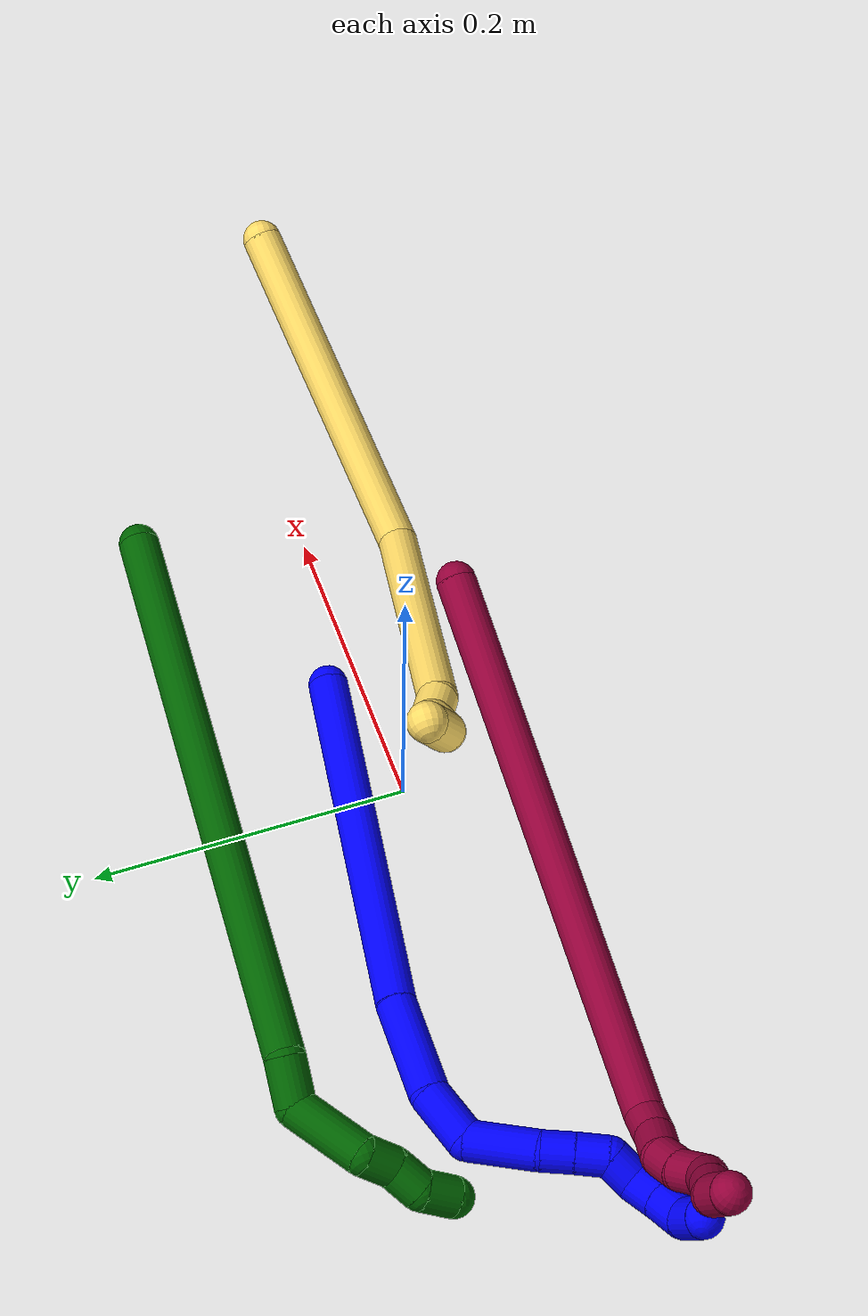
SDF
<sdf version="1.7">
 <world name="default">
  <model name="1">
   <static>0</static>
   <link name="1">
    <collision name="collision-cylinder-e_1_1_4">
     <pose>-0.052096 0.009545 0.104828 -0.090799 -0.459575 0.021253</pose>
     <geometry><cylinder><radius>0.0125</radius><length>0.234895</length></cylinder></geometry>
     <surface>
      <friction><ode><mu>1.16</mu><mu2>1.16</mu2><slip1>0</slip1><slip2>0</slip2></ode></friction>
      <contact><ode><kp>1e+06</kp><kd>1</kd><max_vel>0</max_vel><min_depth>0.001</min_depth></ode></contact>
     </surface>
    </collision>
    <visual name="visual-cylinder-e_1_1_4">
     <pose>-0.052096 0.009545 0.104828 -0.090799 -0.459575 0.021253</pose>
     <geometry><cylinder><radius>0.0125</radius><length>0.234895</length></cylinder></geometry>
     <material><ambient>0 0 1 1</ambient></material>
    </visual>
    <collision name="collision-cylinder-e_2_4_5">
     <pose>-0.121042 0.018943 0.236854 0.005377 -0.554649 -0.001531</pose>
     <geometry><cylinder><radius>0.0125</radius><length>0.06399</length></cylinder></geometry>
     <surface>
      <friction><ode><mu>1.16</mu><mu2>1.16</mu2><slip1>0</slip1><slip2>0</slip2></ode></friction>
      <contact><ode><kp>1e+06</kp><kd>1</kd><max_vel>0</max_vel><min_depth>0.001</min_depth></ode></contact>
     </surface>
    </collision>
    <visual name="visual-cylinder-e_2_4_5">
     <pose>-0.121042 0.018943 0.236854 0.005377 -0.554649 -0.001531</pose>
     <geometry><cylinder><radius>0.0125</radius><length>0.06399</length></cylinder></geometry>
     <material><ambient>0 0 1 1</ambient></material>
    </visual>
    <collision name="collision-cylinder-e_3_5_6">
     <pose>-0.151175 0.015774 0.276244 0.243037 -0.813323 -0.10509</pose>
     <geometry><cylinder><radius>0.0125</radius><length>0.036563</length></cylinder></geometry>
     <surface>
      <friction><ode><mu>1.16</mu><mu2>1.16</mu2><slip1>0</slip1><slip2>0</slip2></ode></friction>
      <contact><ode><kp>1e+06</kp><kd>1</kd><max_vel>0</max_vel><min_depth>0.001</min_depth></ode></contact>
     </surface>
    </collision>
    <visual name="visual-cylinder-e_3_5_6">
     <pose>-0.151175 0.015774 0.276244 0.243037 -0.813323 -0.10509</pose>
     <geometry><cylinder><radius>0.0125</radius><length>0.036563</length></cylinder></geometry>
     <material><ambient>0 0 1 1</ambient></material>
    </visual>
    <collision name="collision-cylinder-e_4_6_7">
     <pose>-0.180951 -0.001568 0.291622 1.35185 -0.843851 -0.691078</pose>
     <geometry><cylinder><radius>0.0125</radius><length>0.044145</length></cylinder></geometry>
     <surface>
      <friction><ode><mu>1.16</mu><mu2>1.16</mu2><slip1>0</slip1><slip2>0</slip2></ode></friction>
      <contact><ode><kp>1e+06</kp><kd>1</kd><max_vel>0</max_vel><min_depth>0.001</min_depth></ode></contact>
     </surface>
    </collision>
    <visual name="visual-cylinder-e_4_6_7">
     <pose>-0.180951 -0.001568 0.291622 1.35185 -0.843851 -0.691078</pose>
     <geometry><cylinder><radius>0.0125</radius><length>0.044145</length></cylinder></geometry>
     <material><ambient>0 0 1 1</ambient></material>
    </visual>
    <collision name="collision-cylinder-e_5_7_8">
     <pose>-0.205636 -0.021778 0.294328 1.65212 -0.945848 -1.01342</pose>
     <geometry><cylinder><radius>0.0125</radius><length>0.020204</length></cylinder></geometry>
     <surface>
      <friction><ode><mu>1.16</mu><mu2>1.16</mu2><slip1>0</slip1><slip2>0</slip2></ode></friction>
      <contact><ode><kp>1e+06</kp><kd>1</kd><max_vel>0</max_vel><min_depth>0.001</min_depth></ode></contact>
     </surface>
    </collision>
    <visual name="visual-cylinder-e_5_7_8">
     <pose>-0.205636 -0.021778 0.294328 1.65212 -0.945848 -1.01342</pose>
     <geometry><cylinder><radius>0.0125</radius><length>0.020204</length></cylinder></geometry>
     <material><ambient>0 0 1 1</ambient></material>
    </visual>
    <collision name="collision-cylinder-e_6_8_9">
     <pose>-0.22217 -0.033222 0.293468 1.63902 -0.982318 -1.04017</pose>
     <geometry><cylinder><radius>0.0125</radius><length>0.020056</length></cylinder></geometry>
     <surface>
      <friction><ode><mu>1.16</mu><mu2>1.16</mu2><slip1>0</slip1><slip2>0</slip2></ode></friction>
      <contact><ode><kp>1e+06</kp><kd>1</kd><max_vel>0</max_vel><min_depth>0.001</min_depth></ode></contact>
     </surface>
    </collision>
    <visual name="visual-cylinder-e_6_8_9">
     <pose>-0.22217 -0.033222 0.293468 1.63902 -0.982318 -1.04017</pose>
     <geometry><cylinder><radius>0.0125</radius><length>0.020056</length></cylinder></geometry>
     <material><ambient>0 0 1 1</ambient></material>
    </visual>
    <collision name="collision-cylinder-e_7_9_10">
     <pose>-0.240103 -0.038493 0.295917 -0.099797 -1.28267 0.074538</pose>
     <geometry><cylinder><radius>0.0125</radius><length>0.020008</length></cylinder></geometry>
     <surface>
      <friction><ode><mu>1.16</mu><mu2>1.16</mu2><slip1>0</slip1><slip2>0</slip2></ode></friction>
      <contact><ode><kp>1e+06</kp><kd>1</kd><max_vel>0</max_vel><min_depth>0.001</min_depth></ode></contact>
     </surface>
    </collision>
    <visual name="visual-cylinder-e_7_9_10">
     <pose>-0.240103 -0.038493 0.295917 -0.099797 -1.28267 0.074538</pose>
     <geometry><cylinder><radius>0.0125</radius><length>0.020008</length></cylinder></geometry>
     <material><ambient>0 0 1 1</ambient></material>
    </visual>
    <collision name="collision-cylinder-e_8_10_11">
     <pose>-0.256288 -0.042633 0.30492 0.621759 -0.714924 -0.238872</pose>
     <geometry><cylinder><radius>0.0125</radius><length>0.020116</length></cylinder></geometry>
     <surface>
      <friction><ode><mu>1.16</mu><mu2>1.16</mu2><slip1>0</slip1><slip2>0</slip2></ode></friction>
      <contact><ode><kp>1e+06</kp><kd>1</kd><max_vel>0</max_vel><min_depth>0.001</min_depth></ode></contact>
     </surface>
    </collision>
    <visual name="visual-cylinder-e_8_10_11">
     <pose>-0.256288 -0.042633 0.30492 0.621759 -0.714924 -0.238872</pose>
     <geometry><cylinder><radius>0.0125</radius><length>0.020116</length></cylinder></geometry>
     <material><ambient>0 0 1 1</ambient></material>
    </visual>
    <collision name="collision-cylinder-e_9_11_12">
     <pose>-0.268748 -0.051452 0.317912 0.572473 -0.626019 -0.189939</pose>
     <geometry><cylinder><radius>0.0125</radius><length>0.020022</length></cylinder></geometry>
     <surface>
      <friction><ode><mu>1.16</mu><mu2>1.16</mu2><slip1>0</slip1><slip2>0</slip2></ode></friction>
      <contact><ode><kp>1e+06</kp><kd>1</kd><max_vel>0</max_vel><min_depth>0.001</min_depth></ode></contact>
     </surface>
    </collision>
    <visual name="visual-cylinder-e_9_11_12">
     <pose>-0.268748 -0.051452 0.317912 0.572473 -0.626019 -0.189939</pose>
     <geometry><cylinder><radius>0.0125</radius><length>0.020022</length></cylinder></geometry>
     <material><ambient>0 0 1 1</ambient></material>
    </visual>
    <collision name="collision-cylinder-e_10_12_2">
     <pose>-0.275382 -0.064253 0.330093 1.00309 -0.076933 -0.042198</pose>
     <geometry><cylinder><radius>0.0125</radius><length>0.02</length></cylinder></geometry>
     <surface>
      <friction><ode><mu>1.16</mu><mu2>1.16</mu2><slip1>0</slip1><slip2>0</slip2></ode></friction>
      <contact><ode><kp>1e+06</kp><kd>1</kd><max_vel>0</max_vel><min_depth>0.001</min_depth></ode></contact>
     </surface>
    </collision>
    <visual name="visual-cylinder-e_10_12_2">
     <pose>-0.275382 -0.064253 0.330093 1.00309 -0.076933 -0.042198</pose>
     <geometry><cylinder><radius>0.0125</radius><length>0.02</length></cylinder></geometry>
     <material><ambient>0 0 1 1</ambient></material>
    </visual>
    <collision name="collision-sphere-2">
     <pose>-0.27615 -0.072659 0.335454 0 -0 0</pose>
     <geometry><sphere><radius>0.0125</radius></sphere></geometry>
     <surface>
      <friction><ode><mu>1.16</mu><mu2>1.16</mu2><slip1>0</slip1><slip2>0</slip2></ode></friction>
      <contact><ode><kp>1e+06</kp><kd>1</kd><max_vel>0</max_vel><min_depth>0.001</min_depth></ode></contact>
     </surface>
    </collision>
    <visual name="visual-sphere-2">
     <pose>-0.27615 -0.072659 0.335454 0 -0 0</pose>
     <geometry><sphere><radius>0.0125</radius></sphere></geometry>
     <material><ambient>0 0 1 1</ambient></material>
    </visual>
    <collision name="collision-sphere-12">
     <pose>-0.274613 -0.055847 0.324732 0 -0 0</pose>
     <geometry><sphere><radius>0.0125</radius></sphere></geometry>
     <surface>
      <friction><ode><mu>1.16</mu><mu2>1.16</mu2><slip1>0</slip1><slip2>0</slip2></ode></friction>
      <contact><ode><kp>1e+06</kp><kd>1</kd><max_vel>0</max_vel><min_depth>0.001</min_depth></ode></contact>
     </surface>
    </collision>
    <visual name="visual-sphere-12">
     <pose>-0.274613 -0.055847 0.324732 0 -0 0</pose>
     <geometry><sphere><radius>0.0125</radius></sphere></geometry>
     <material><ambient>0 0 1 1</ambient></material>
    </visual>
    <collision name="collision-sphere-11">
     <pose>-0.262882 -0.047057 0.311093 0 -0 0</pose>
     <geometry><sphere><radius>0.0125</radius></sphere></geometry>
     <surface>
      <friction><ode><mu>1.16</mu><mu2>1.16</mu2><slip1>0</slip1><slip2>0</slip2></ode></friction>
      <contact><ode><kp>1e+06</kp><kd>1</kd><max_vel>0</max_vel><min_depth>0.001</min_depth></ode></contact>
     </surface>
    </collision>
    <visual name="visual-sphere-11">
     <pose>-0.262882 -0.047057 0.311093 0 -0 0</pose>
     <geometry><sphere><radius>0.0125</radius></sphere></geometry>
     <material><ambient>0 0 1 1</ambient></material>
    </visual>
    <collision name="collision-sphere-10">
     <pose>-0.249695 -0.03821 0.298746 0 -0 0</pose>
     <geometry><sphere><radius>0.0125</radius></sphere></geometry>
     <surface>
      <friction><ode><mu>1.16</mu><mu2>1.16</mu2><slip1>0</slip1><slip2>0</slip2></ode></friction>
      <contact><ode><kp>1e+06</kp><kd>1</kd><max_vel>0</max_vel><min_depth>0.001</min_depth></ode></contact>
     </surface>
    </collision>
    <visual name="visual-sphere-10">
     <pose>-0.249695 -0.03821 0.298746 0 -0 0</pose>
     <geometry><sphere><radius>0.0125</radius></sphere></geometry>
     <material><ambient>0 0 1 1</ambient></material>
    </visual>
    <collision name="collision-sphere-9">
     <pose>-0.230511 -0.038776 0.293089 0 -0 0</pose>
     <geometry><sphere><radius>0.0125</radius></sphere></geometry>
     <surface>
      <friction><ode><mu>1.16</mu><mu2>1.16</mu2><slip1>0</slip1><slip2>0</slip2></ode></friction>
      <contact><ode><kp>1e+06</kp><kd>1</kd><max_vel>0</max_vel><min_depth>0.001</min_depth></ode></contact>
     </surface>
    </collision>
    <visual name="visual-sphere-9">
     <pose>-0.230511 -0.038776 0.293089 0 -0 0</pose>
     <geometry><sphere><radius>0.0125</radius></sphere></geometry>
     <material><ambient>0 0 1 1</ambient></material>
    </visual>
    <collision name="collision-sphere-4">
     <pose>-0.104192 0.019089 0.209656 0 -0 0</pose>
     <geometry><sphere><radius>0.0125</radius></sphere></geometry>
     <surface>
      <friction><ode><mu>1.16</mu><mu2>1.16</mu2><slip1>0</slip1><slip2>0</slip2></ode></friction>
      <contact><ode><kp>1e+06</kp><kd>1</kd><max_vel>0</max_vel><min_depth>0.001</min_depth></ode></contact>
     </surface>
    </collision>
    <visual name="visual-sphere-4">
     <pose>-0.104192 0.019089 0.209656 0 -0 0</pose>
     <geometry><sphere><radius>0.0125</radius></sphere></geometry>
     <material><ambient>0 0 1 1</ambient></material>
    </visual>
    <collision name="collision-sphere-1">
     <geometry><sphere><radius>0.0125</radius></sphere></geometry>
     <surface>
      <friction><ode><mu>1.16</mu><mu2>1.16</mu2><slip1>0</slip1><slip2>0</slip2></ode></friction>
      <contact><ode><kp>1e+06</kp><kd>1</kd><max_vel>0</max_vel><min_depth>0.001</min_depth></ode></contact>
     </surface>
    </collision>
    <visual name="visual-sphere-1">
     <geometry><sphere><radius>0.0125</radius></sphere></geometry>
     <material><ambient>0 0 1 1</ambient></material>
    </visual>
    <collision name="collision-sphere-8">
     <pose>-0.213829 -0.027669 0.293848 0 -0 0</pose>
     <geometry><sphere><radius>0.0125</radius></sphere></geometry>
     <surface>
      <friction><ode><mu>1.16</mu><mu2>1.16</mu2><slip1>0</slip1><slip2>0</slip2></ode></friction>
      <contact><ode><kp>1e+06</kp><kd>1</kd><max_vel>0</max_vel><min_depth>0.001</min_depth></ode></contact>
     </surface>
    </collision>
    <visual name="visual-sphere-8">
     <pose>-0.213829 -0.027669 0.293848 0 -0 0</pose>
     <geometry><sphere><radius>0.0125</radius></sphere></geometry>
     <material><ambient>0 0 1 1</ambient></material>
    </visual>
    <collision name="collision-sphere-5">
     <pose>-0.137892 0.018797 0.264052 0 -0 0</pose>
     <geometry><sphere><radius>0.0125</radius></sphere></geometry>
     <surface>
      <friction><ode><mu>1.16</mu><mu2>1.16</mu2><slip1>0</slip1><slip2>0</slip2></ode></friction>
      <contact><ode><kp>1e+06</kp><kd>1</kd><max_vel>0</max_vel><min_depth>0.001</min_depth></ode></contact>
     </surface>
    </collision>
    <visual name="visual-sphere-5">
     <pose>-0.137892 0.018797 0.264052 0 -0 0</pose>
     <geometry><sphere><radius>0.0125</radius></sphere></geometry>
     <material><ambient>0 0 1 1</ambient></material>
    </visual>
    <collision name="collision-sphere-6">
     <pose>-0.164458 0.012751 0.288436 0 -0 0</pose>
     <geometry><sphere><radius>0.0125</radius></sphere></geometry>
     <surface>
      <friction><ode><mu>1.16</mu><mu2>1.16</mu2><slip1>0</slip1><slip2>0</slip2></ode></friction>
      <contact><ode><kp>1e+06</kp><kd>1</kd><max_vel>0</max_vel><min_depth>0.001</min_depth></ode></contact>
     </surface>
    </collision>
    <visual name="visual-sphere-6">
     <pose>-0.164458 0.012751 0.288436 0 -0 0</pose>
     <geometry><sphere><radius>0.0125</radius></sphere></geometry>
     <material><ambient>0 0 1 1</ambient></material>
    </visual>
    <collision name="collision-sphere-7">
     <pose>-0.197444 -0.015887 0.294808 0 -0 0</pose>
     <geometry><sphere><radius>0.0125</radius></sphere></geometry>
     <surface>
      <friction><ode><mu>1.16</mu><mu2>1.16</mu2><slip1>0</slip1><slip2>0</slip2></ode></friction>
      <contact><ode><kp>1e+06</kp><kd>1</kd><max_vel>0</max_vel><min_depth>0.001</min_depth></ode></contact>
     </surface>
    </collision>
    <visual name="visual-sphere-7">
     <pose>-0.197444 -0.015887 0.294808 0 -0 0</pose>
     <geometry><sphere><radius>0.0125</radius></sphere></geometry>
     <material><ambient>0 0 1 1</ambient></material>
    </visual>
    <inertial>
     <pose>-0.125913 -0.002175 0.199216 0 -0 0</pose>
     <mass>0.5</mass>
     <inertia>
      <ixx>0.001003</ixx>
      <ixy>0</ixy>
      <ixz>0</ixz>
      <iyy>0.001136</iyy>
      <iyz>0</iyz>
      <izz>0.000461</izz>
     </inertia>
    </inertial>
   </link>
   <pose>0.084291 0.021603 0.011498 -1.17536 -0.538617 0.883763</pose>
  </model>
  <model name="5">
   <static>0</static>
   <link name="5">
    <collision name="collision-cylinder-e_1_1_4">
     <pose>-0.011974 -0.023178 -0.10976 2.93348 -0.106336 -0.942591</pose>
     <geometry><cylinder><radius>0.0125</radius><length>0.225635</length></cylinder></geometry>
     <surface>
      <friction><ode><mu>1.16</mu><mu2>1.16</mu2><slip1>0</slip1><slip2>0</slip2></ode></friction>
      <contact><ode><kp>1e+06</kp><kd>1</kd><max_vel>0</max_vel><min_depth>0.001</min_depth></ode></contact>
     </surface>
    </collision>
    <visual name="visual-cylinder-e_1_1_4">
     <pose>-0.011974 -0.023178 -0.10976 2.93348 -0.106336 -0.942591</pose>
     <geometry><cylinder><radius>0.0125</radius><length>0.225635</length></cylinder></geometry>
     <material><ambient>1 0.858824 0.4 1</ambient></material>
    </visual>
    <collision name="collision-cylinder-e_2_4_5">
     <pose>-0.022621 0.002594 -0.297856 -2.5831 0.014363 -0.050082</pose>
     <geometry><cylinder><radius>0.0125</radius><length>0.184763</length></cylinder></geometry>
     <surface>
      <friction><ode><mu>1.16</mu><mu2>1.16</mu2><slip1>0</slip1><slip2>0</slip2></ode></friction>
      <contact><ode><kp>1e+06</kp><kd>1</kd><max_vel>0</max_vel><min_depth>0.001</min_depth></ode></contact>
     </surface>
    </collision>
    <visual name="visual-cylinder-e_2_4_5">
     <pose>-0.022621 0.002594 -0.297856 -2.5831 0.014363 -0.050082</pose>
     <geometry><cylinder><radius>0.0125</radius><length>0.184763</length></cylinder></geometry>
     <material><ambient>1 0.858824 0.4 1</ambient></material>
    </visual>
    <collision name="collision-cylinder-e_3_5_6">
     <pose>-0.017739 0.056919 -0.384052 -2.5417 0.357285 -1.0569</pose>
     <geometry><cylinder><radius>0.0125</radius><length>0.02033</length></cylinder></geometry>
     <surface>
      <friction><ode><mu>1.16</mu><mu2>1.16</mu2><slip1>0</slip1><slip2>0</slip2></ode></friction>
      <contact><ode><kp>1e+06</kp><kd>1</kd><max_vel>0</max_vel><min_depth>0.001</min_depth></ode></contact>
     </surface>
    </collision>
    <visual name="visual-cylinder-e_3_5_6">
     <pose>-0.017739 0.056919 -0.384052 -2.5417 0.357285 -1.0569</pose>
     <geometry><cylinder><radius>0.0125</radius><length>0.02033</length></cylinder></geometry>
     <material><ambient>1 0.858824 0.4 1</ambient></material>
    </visual>
    <collision name="collision-cylinder-e_4_6_7">
     <pose>-0.017419 0.074909 -0.402986 -2.29126 -0.190407 0.415709</pose>
     <geometry><cylinder><radius>0.0125</radius><length>0.034187</length></cylinder></geometry>
     <surface>
      <friction><ode><mu>1.16</mu><mu2>1.16</mu2><slip1>0</slip1><slip2>0</slip2></ode></friction>
      <contact><ode><kp>1e+06</kp><kd>1</kd><max_vel>0</max_vel><min_depth>0.001</min_depth></ode></contact>
     </surface>
    </collision>
    <visual name="visual-cylinder-e_4_6_7">
     <pose>-0.017419 0.074909 -0.402986 -2.29126 -0.190407 0.415709</pose>
     <geometry><cylinder><radius>0.0125</radius><length>0.034187</length></cylinder></geometry>
     <material><ambient>1 0.858824 0.4 1</ambient></material>
    </visual>
    <collision name="collision-cylinder-e_5_7_2">
     <pose>-0.017185 0.104505 -0.416763 -1.72864 0.199062 -0.232967</pose>
     <geometry><cylinder><radius>0.0125</radius><length>0.035085</length></cylinder></geometry>
     <surface>
      <friction><ode><mu>1.16</mu><mu2>1.16</mu2><slip1>0</slip1><slip2>0</slip2></ode></friction>
      <contact><ode><kp>1e+06</kp><kd>1</kd><max_vel>0</max_vel><min_depth>0.001</min_depth></ode></contact>
     </surface>
    </collision>
    <visual name="visual-cylinder-e_5_7_2">
     <pose>-0.017185 0.104505 -0.416763 -1.72864 0.199062 -0.232967</pose>
     <geometry><cylinder><radius>0.0125</radius><length>0.035085</length></cylinder></geometry>
     <material><ambient>1 0.858824 0.4 1</ambient></material>
    </visual>
    <collision name="collision-sphere-2">
     <pose>-0.013716 0.121487 -0.419466 0 -0 0</pose>
     <geometry><sphere><radius>0.0125</radius></sphere></geometry>
     <surface>
      <friction><ode><mu>1.16</mu><mu2>1.16</mu2><slip1>0</slip1><slip2>0</slip2></ode></friction>
      <contact><ode><kp>1e+06</kp><kd>1</kd><max_vel>0</max_vel><min_depth>0.001</min_depth></ode></contact>
     </surface>
    </collision>
    <visual name="visual-sphere-2">
     <pose>-0.013716 0.121487 -0.419466 0 -0 0</pose>
     <geometry><sphere><radius>0.0125</radius></sphere></geometry>
     <material><ambient>1 0.858824 0.4 1</ambient></material>
    </visual>
    <collision name="collision-sphere-7">
     <pose>-0.020654 0.087522 -0.41406 0 -0 0</pose>
     <geometry><sphere><radius>0.0125</radius></sphere></geometry>
     <surface>
      <friction><ode><mu>1.16</mu><mu2>1.16</mu2><slip1>0</slip1><slip2>0</slip2></ode></friction>
      <contact><ode><kp>1e+06</kp><kd>1</kd><max_vel>0</max_vel><min_depth>0.001</min_depth></ode></contact>
     </surface>
    </collision>
    <visual name="visual-sphere-7">
     <pose>-0.020654 0.087522 -0.41406 0 -0 0</pose>
     <geometry><sphere><radius>0.0125</radius></sphere></geometry>
     <material><ambient>1 0.858824 0.4 1</ambient></material>
    </visual>
    <collision name="collision-sphere-6">
     <pose>-0.014184 0.062295 -0.391913 0 -0 0</pose>
     <geometry><sphere><radius>0.0125</radius></sphere></geometry>
     <surface>
      <friction><ode><mu>1.16</mu><mu2>1.16</mu2><slip1>0</slip1><slip2>0</slip2></ode></friction>
      <contact><ode><kp>1e+06</kp><kd>1</kd><max_vel>0</max_vel><min_depth>0.001</min_depth></ode></contact>
     </surface>
    </collision>
    <visual name="visual-sphere-6">
     <pose>-0.014184 0.062295 -0.391913 0 -0 0</pose>
     <geometry><sphere><radius>0.0125</radius></sphere></geometry>
     <material><ambient>1 0.858824 0.4 1</ambient></material>
    </visual>
    <collision name="collision-sphere-5">
     <pose>-0.021294 0.051542 -0.376192 0 -0 0</pose>
     <geometry><sphere><radius>0.0125</radius></sphere></geometry>
     <surface>
      <friction><ode><mu>1.16</mu><mu2>1.16</mu2><slip1>0</slip1><slip2>0</slip2></ode></friction>
      <contact><ode><kp>1e+06</kp><kd>1</kd><max_vel>0</max_vel><min_depth>0.001</min_depth></ode></contact>
     </surface>
    </collision>
    <visual name="visual-sphere-5">
     <pose>-0.021294 0.051542 -0.376192 0 -0 0</pose>
     <geometry><sphere><radius>0.0125</radius></sphere></geometry>
     <material><ambient>1 0.858824 0.4 1</ambient></material>
    </visual>
    <collision name="collision-sphere-1">
     <geometry><sphere><radius>0.0125</radius></sphere></geometry>
     <surface>
      <friction><ode><mu>1.16</mu><mu2>1.16</mu2><slip1>0</slip1><slip2>0</slip2></ode></friction>
      <contact><ode><kp>1e+06</kp><kd>1</kd><max_vel>0</max_vel><min_depth>0.001</min_depth></ode></contact>
     </surface>
    </collision>
    <visual name="visual-sphere-1">
     <geometry><sphere><radius>0.0125</radius></sphere></geometry>
     <material><ambient>1 0.858824 0.4 1</ambient></material>
    </visual>
    <collision name="collision-sphere-4">
     <pose>-0.023948 -0.046355 -0.21952 0 -0 0</pose>
     <geometry><sphere><radius>0.0125</radius></sphere></geometry>
     <surface>
      <friction><ode><mu>1.16</mu><mu2>1.16</mu2><slip1>0</slip1><slip2>0</slip2></ode></friction>
      <contact><ode><kp>1e+06</kp><kd>1</kd><max_vel>0</max_vel><min_depth>0.001</min_depth></ode></contact>
     </surface>
    </collision>
    <visual name="visual-sphere-4">
     <pose>-0.023948 -0.046355 -0.21952 0 -0 0</pose>
     <geometry><sphere><radius>0.0125</radius></sphere></geometry>
     <material><ambient>1 0.858824 0.4 1</ambient></material>
    </visual>
    <inertial>
     <pose>-0.016881 0.005268 -0.23201 0 -0 0</pose>
     <mass>0.5</mass>
     <inertia>
      <ixx>0.000301</ixx>
      <ixy>0</ixy>
      <ixz>0</ixz>
      <iyy>-0.001788</iyy>
      <iyz>0</iyz>
      <izz>-3.1e-05</izz>
     </inertia>
    </inertial>
   </link>
   <pose>0.37553 -0.028683 0.104405 1.41592 0.214381 1.48821</pose>
  </model>
  <model name="6">
   <static>0</static>
   <link name="6">
    <collision name="collision-cylinder-e_1_1_4">
     <pose>-0.023228 -0.013891 -0.177844 3.06364 -0.129483 -2.05861</pose>
     <geometry><cylinder><radius>0.0125</radius><length>0.359783</length></cylinder></geometry>
     <surface>
      <friction><ode><mu>1.16</mu><mu2>1.16</mu2><slip1>0</slip1><slip2>0</slip2></ode></friction>
      <contact><ode><kp>1e+06</kp><kd>1</kd><max_vel>0</max_vel><min_depth>0.001</min_depth></ode></contact>
     </surface>
    </collision>
    <visual name="visual-cylinder-e_1_1_4">
     <pose>-0.023228 -0.013891 -0.177844 3.06364 -0.129483 -2.05861</pose>
     <geometry><cylinder><radius>0.0125</radius><length>0.359783</length></cylinder></geometry>
     <material><ambient>0 0.392157 0.003922 1</ambient></material>
    </visual>
    <collision name="collision-cylinder-e_2_4_5">
     <pose>-0.049599 -0.023625 -0.369514 -2.84952 -0.214341 1.26305</pose>
     <geometry><cylinder><radius>0.0125</radius><length>0.029551</length></cylinder></geometry>
     <surface>
      <friction><ode><mu>1.16</mu><mu2>1.16</mu2><slip1>0</slip1><slip2>0</slip2></ode></friction>
      <contact><ode><kp>1e+06</kp><kd>1</kd><max_vel>0</max_vel><min_depth>0.001</min_depth></ode></contact>
     </surface>
    </collision>
    <visual name="visual-cylinder-e_2_4_5">
     <pose>-0.049599 -0.023625 -0.369514 -2.84952 -0.214341 1.26305</pose>
     <geometry><cylinder><radius>0.0125</radius><length>0.029551</length></cylinder></geometry>
     <material><ambient>0 0.392157 0.003922 1</ambient></material>
    </visual>
    <collision name="collision-cylinder-e_3_5_6">
     <pose>-0.041016 -0.019308 -0.404341 -3.13401 0.509177 -3.11246</pose>
     <geometry><cylinder><radius>0.0125</radius><length>0.048107</length></cylinder></geometry>
     <surface>
      <friction><ode><mu>1.16</mu><mu2>1.16</mu2><slip1>0</slip1><slip2>0</slip2></ode></friction>
      <contact><ode><kp>1e+06</kp><kd>1</kd><max_vel>0</max_vel><min_depth>0.001</min_depth></ode></contact>
     </surface>
    </collision>
    <visual name="visual-cylinder-e_3_5_6">
     <pose>-0.041016 -0.019308 -0.404341 -3.13401 0.509177 -3.11246</pose>
     <geometry><cylinder><radius>0.0125</radius><length>0.048107</length></cylinder></geometry>
     <material><ambient>0 0.392157 0.003922 1</ambient></material>
    </visual>
    <collision name="collision-cylinder-e_4_6_7">
     <pose>-0.022993 -0.012757 -0.430472 -2.247 0.655246 -1.23278</pose>
     <geometry><cylinder><radius>0.0125</radius><length>0.020673</length></cylinder></geometry>
     <surface>
      <friction><ode><mu>1.16</mu><mu2>1.16</mu2><slip1>0</slip1><slip2>0</slip2></ode></friction>
      <contact><ode><kp>1e+06</kp><kd>1</kd><max_vel>0</max_vel><min_depth>0.001</min_depth></ode></contact>
     </surface>
    </collision>
    <visual name="visual-cylinder-e_4_6_7">
     <pose>-0.022993 -0.012757 -0.430472 -2.247 0.655246 -1.23278</pose>
     <geometry><cylinder><radius>0.0125</radius><length>0.020673</length></cylinder></geometry>
     <material><ambient>0 0.392157 0.003922 1</ambient></material>
    </visual>
    <collision name="collision-cylinder-e_5_7_8">
     <pose>-0.012513 -0.002018 -0.443693 -2.64867 0.427102 -1.42284</pose>
     <geometry><cylinder><radius>0.0125</radius><length>0.020184</length></cylinder></geometry>
     <surface>
      <friction><ode><mu>1.16</mu><mu2>1.16</mu2><slip1>0</slip1><slip2>0</slip2></ode></friction>
      <contact><ode><kp>1e+06</kp><kd>1</kd><max_vel>0</max_vel><min_depth>0.001</min_depth></ode></contact>
     </surface>
    </collision>
    <visual name="visual-cylinder-e_5_7_8">
     <pose>-0.012513 -0.002018 -0.443693 -2.64867 0.427102 -1.42284</pose>
     <geometry><cylinder><radius>0.0125</radius><length>0.020184</length></cylinder></geometry>
     <material><ambient>0 0.392157 0.003922 1</ambient></material>
    </visual>
    <collision name="collision-cylinder-e_6_8_2">
     <pose>-0.000684 0.008912 -0.455772 -2.1153 0.782342 -1.26364</pose>
     <geometry><cylinder><radius>0.0125</radius><length>0.021702</length></cylinder></geometry>
     <surface>
      <friction><ode><mu>1.16</mu><mu2>1.16</mu2><slip1>0</slip1><slip2>0</slip2></ode></friction>
      <contact><ode><kp>1e+06</kp><kd>1</kd><max_vel>0</max_vel><min_depth>0.001</min_depth></ode></contact>
     </surface>
    </collision>
    <visual name="visual-cylinder-e_6_8_2">
     <pose>-0.000684 0.008912 -0.455772 -2.1153 0.782342 -1.26364</pose>
     <geometry><cylinder><radius>0.0125</radius><length>0.021702</length></cylinder></geometry>
     <material><ambient>0 0.392157 0.003922 1</ambient></material>
    </visual>
    <collision name="collision-sphere-2">
     <pose>0.006966 0.015495 -0.459759 0 -0 0</pose>
     <geometry><sphere><radius>0.0125</radius></sphere></geometry>
     <surface>
      <friction><ode><mu>1.16</mu><mu2>1.16</mu2><slip1>0</slip1><slip2>0</slip2></ode></friction>
      <contact><ode><kp>1e+06</kp><kd>1</kd><max_vel>0</max_vel><min_depth>0.001</min_depth></ode></contact>
     </surface>
    </collision>
    <visual name="visual-sphere-2">
     <pose>0.006966 0.015495 -0.459759 0 -0 0</pose>
     <geometry><sphere><radius>0.0125</radius></sphere></geometry>
     <material><ambient>0 0.392157 0.003922 1</ambient></material>
    </visual>
    <collision name="collision-sphere-4">
     <pose>-0.046456 -0.027782 -0.355688 0 -0 0</pose>
     <geometry><sphere><radius>0.0125</radius></sphere></geometry>
     <surface>
      <friction><ode><mu>1.16</mu><mu2>1.16</mu2><slip1>0</slip1><slip2>0</slip2></ode></friction>
      <contact><ode><kp>1e+06</kp><kd>1</kd><max_vel>0</max_vel><min_depth>0.001</min_depth></ode></contact>
     </surface>
    </collision>
    <visual name="visual-sphere-4">
     <pose>-0.046456 -0.027782 -0.355688 0 -0 0</pose>
     <geometry><sphere><radius>0.0125</radius></sphere></geometry>
     <material><ambient>0 0.392157 0.003922 1</ambient></material>
    </visual>
    <collision name="collision-sphere-1">
     <geometry><sphere><radius>0.0125</radius></sphere></geometry>
     <surface>
      <friction><ode><mu>1.16</mu><mu2>1.16</mu2><slip1>0</slip1><slip2>0</slip2></ode></friction>
      <contact><ode><kp>1e+06</kp><kd>1</kd><max_vel>0</max_vel><min_depth>0.001</min_depth></ode></contact>
     </surface>
    </collision>
    <visual name="visual-sphere-1">
     <geometry><sphere><radius>0.0125</radius></sphere></geometry>
     <material><ambient>0 0.392157 0.003922 1</ambient></material>
    </visual>
    <collision name="collision-sphere-8">
     <pose>-0.008333 0.002329 -0.451785 0 -0 0</pose>
     <geometry><sphere><radius>0.0125</radius></sphere></geometry>
     <surface>
      <friction><ode><mu>1.16</mu><mu2>1.16</mu2><slip1>0</slip1><slip2>0</slip2></ode></friction>
      <contact><ode><kp>1e+06</kp><kd>1</kd><max_vel>0</max_vel><min_depth>0.001</min_depth></ode></contact>
     </surface>
    </collision>
    <visual name="visual-sphere-8">
     <pose>-0.008333 0.002329 -0.451785 0 -0 0</pose>
     <geometry><sphere><radius>0.0125</radius></sphere></geometry>
     <material><ambient>0 0.392157 0.003922 1</ambient></material>
    </visual>
    <collision name="collision-sphere-5">
     <pose>-0.052741 -0.019468 -0.38334 0 -0 0</pose>
     <geometry><sphere><radius>0.0125</radius></sphere></geometry>
     <surface>
      <friction><ode><mu>1.16</mu><mu2>1.16</mu2><slip1>0</slip1><slip2>0</slip2></ode></friction>
      <contact><ode><kp>1e+06</kp><kd>1</kd><max_vel>0</max_vel><min_depth>0.001</min_depth></ode></contact>
     </surface>
    </collision>
    <visual name="visual-sphere-5">
     <pose>-0.052741 -0.019468 -0.38334 0 -0 0</pose>
     <geometry><sphere><radius>0.0125</radius></sphere></geometry>
     <material><ambient>0 0.392157 0.003922 1</ambient></material>
    </visual>
    <collision name="collision-sphere-6">
     <pose>-0.029291 -0.019149 -0.425343 0 -0 0</pose>
     <geometry><sphere><radius>0.0125</radius></sphere></geometry>
     <surface>
      <friction><ode><mu>1.16</mu><mu2>1.16</mu2><slip1>0</slip1><slip2>0</slip2></ode></friction>
      <contact><ode><kp>1e+06</kp><kd>1</kd><max_vel>0</max_vel><min_depth>0.001</min_depth></ode></contact>
     </surface>
    </collision>
    <visual name="visual-sphere-6">
     <pose>-0.029291 -0.019149 -0.425343 0 -0 0</pose>
     <geometry><sphere><radius>0.0125</radius></sphere></geometry>
     <material><ambient>0 0.392157 0.003922 1</ambient></material>
    </visual>
    <collision name="collision-sphere-7">
     <pose>-0.016694 -0.006364 -0.435601 0 -0 0</pose>
     <geometry><sphere><radius>0.0125</radius></sphere></geometry>
     <surface>
      <friction><ode><mu>1.16</mu><mu2>1.16</mu2><slip1>0</slip1><slip2>0</slip2></ode></friction>
      <contact><ode><kp>1e+06</kp><kd>1</kd><max_vel>0</max_vel><min_depth>0.001</min_depth></ode></contact>
     </surface>
    </collision>
    <visual name="visual-sphere-7">
     <pose>-0.016694 -0.006364 -0.435601 0 -0 0</pose>
     <geometry><sphere><radius>0.0125</radius></sphere></geometry>
     <material><ambient>0 0.392157 0.003922 1</ambient></material>
    </visual>
    <inertial>
     <pose>-0.025077 -0.013471 -0.244204 0 -0 0</pose>
     <mass>0.5</mass>
     <inertia>
      <ixx>-0.00523</ixx>
      <ixy>0</ixy>
      <ixz>0</ixz>
      <iyy>-0.001545</iyy>
      <iyz>0</iyz>
      <izz>0.000757</izz>
     </inertia>
    </inertial>
   </link>
   <pose>0.163185 0.118132 0.101611 -1.45492 -0.209749 -1.5079</pose>
  </model>
  <model name="8">
   <static>0</static>
   <link name="8">
    <collision name="collision-cylinder-e_1_1_4">
     <pose>-0.153679 -0.082634 -0.016125 1.76351 -1.06961 -1.24693</pose>
     <geometry><cylinder><radius>0.0125</radius><length>0.35046</length></cylinder></geometry>
     <surface>
      <friction><ode><mu>1.16</mu><mu2>1.16</mu2><slip1>0</slip1><slip2>0</slip2></ode></friction>
      <contact><ode><kp>1e+06</kp><kd>1</kd><max_vel>0</max_vel><min_depth>0.001</min_depth></ode></contact>
     </surface>
    </collision>
    <visual name="visual-cylinder-e_1_1_4">
     <pose>-0.153679 -0.082634 -0.016125 1.76351 -1.06961 -1.24693</pose>
     <geometry><cylinder><radius>0.0125</radius><length>0.35046</length></cylinder></geometry>
     <material><ambient>0.584314 0 0.227451 1</ambient></material>
    </visual>
    <collision name="collision-cylinder-e_2_4_5">
     <pose>-0.316595 -0.166789 -0.026184 0.245669 -0.975695 -0.130831</pose>
     <geometry><cylinder><radius>0.0125</radius><length>0.022308</length></cylinder></geometry>
     <surface>
      <friction><ode><mu>1.16</mu><mu2>1.16</mu2><slip1>0</slip1><slip2>0</slip2></ode></friction>
      <contact><ode><kp>1e+06</kp><kd>1</kd><max_vel>0</max_vel><min_depth>0.001</min_depth></ode></contact>
     </surface>
    </collision>
    <visual name="visual-cylinder-e_2_4_5">
     <pose>-0.316595 -0.166789 -0.026184 0.245669 -0.975695 -0.130831</pose>
     <geometry><cylinder><radius>0.0125</radius><length>0.022308</length></cylinder></geometry>
     <material><ambient>0.584314 0 0.227451 1</ambient></material>
    </visual>
    <collision name="collision-cylinder-e_3_5_6">
     <pose>-0.335719 -0.168001 -0.012574 -0.040875 -0.918552 0.020217</pose>
     <geometry><cylinder><radius>0.0125</radius><length>0.024884</length></cylinder></geometry>
     <surface>
      <friction><ode><mu>1.16</mu><mu2>1.16</mu2><slip1>0</slip1><slip2>0</slip2></ode></friction>
      <contact><ode><kp>1e+06</kp><kd>1</kd><max_vel>0</max_vel><min_depth>0.001</min_depth></ode></contact>
     </surface>
    </collision>
    <visual name="visual-cylinder-e_3_5_6">
     <pose>-0.335719 -0.168001 -0.012574 -0.040875 -0.918552 0.020217</pose>
     <geometry><cylinder><radius>0.0125</radius><length>0.024884</length></cylinder></geometry>
     <material><ambient>0.584314 0 0.227451 1</ambient></material>
    </visual>
    <collision name="collision-cylinder-e_4_6_7">
     <pose>-0.352153 -0.170987 0.002133 0.431166 -0.693019 -0.157814</pose>
     <geometry><cylinder><radius>0.0125</radius><length>0.020493</length></cylinder></geometry>
     <surface>
      <friction><ode><mu>1.16</mu><mu2>1.16</mu2><slip1>0</slip1><slip2>0</slip2></ode></friction>
      <contact><ode><kp>1e+06</kp><kd>1</kd><max_vel>0</max_vel><min_depth>0.001</min_depth></ode></contact>
     </surface>
    </collision>
    <visual name="visual-cylinder-e_4_6_7">
     <pose>-0.352153 -0.170987 0.002133 0.431166 -0.693019 -0.157814</pose>
     <geometry><cylinder><radius>0.0125</radius><length>0.020493</length></cylinder></geometry>
     <material><ambient>0.584314 0 0.227451 1</ambient></material>
    </visual>
    <collision name="collision-cylinder-e_5_7_8">
     <pose>-0.363033 -0.178849 0.01821 0.473431 -0.408369 -0.099823</pose>
     <geometry><cylinder><radius>0.0125</radius><length>0.021828</length></cylinder></geometry>
     <surface>
      <friction><ode><mu>1.16</mu><mu2>1.16</mu2><slip1>0</slip1><slip2>0</slip2></ode></friction>
      <contact><ode><kp>1e+06</kp><kd>1</kd><max_vel>0</max_vel><min_depth>0.001</min_depth></ode></contact>
     </surface>
    </collision>
    <visual name="visual-cylinder-e_5_7_8">
     <pose>-0.363033 -0.178849 0.01821 0.473431 -0.408369 -0.099823</pose>
     <geometry><cylinder><radius>0.0125</radius><length>0.021828</length></cylinder></geometry>
     <material><ambient>0.584314 0 0.227451 1</ambient></material>
    </visual>
    <collision name="collision-cylinder-e_6_8_9">
     <pose>-0.373592 -0.181899 0.034803 -0.195032 -0.671858 0.068288</pose>
     <geometry><cylinder><radius>0.0125</radius><length>0.02</length></cylinder></geometry>
     <surface>
      <friction><ode><mu>1.16</mu><mu2>1.16</mu2><slip1>0</slip1><slip2>0</slip2></ode></friction>
      <contact><ode><kp>1e+06</kp><kd>1</kd><max_vel>0</max_vel><min_depth>0.001</min_depth></ode></contact>
     </surface>
    </collision>
    <visual name="visual-cylinder-e_6_8_9">
     <pose>-0.373592 -0.181899 0.034803 -0.195032 -0.671858 0.068288</pose>
     <geometry><cylinder><radius>0.0125</radius><length>0.02</length></cylinder></geometry>
     <material><ambient>0.584314 0 0.227451 1</ambient></material>
    </visual>
    <collision name="collision-cylinder-e_7_9_10">
     <pose>-0.386558 -0.178343 0.049593 -0.279174 -0.738991 0.10872</pose>
     <geometry><cylinder><radius>0.0125</radius><length>0.020017</length></cylinder></geometry>
     <surface>
      <friction><ode><mu>1.16</mu><mu2>1.16</mu2><slip1>0</slip1><slip2>0</slip2></ode></friction>
      <contact><ode><kp>1e+06</kp><kd>1</kd><max_vel>0</max_vel><min_depth>0.001</min_depth></ode></contact>
     </surface>
    </collision>
    <visual name="visual-cylinder-e_7_9_10">
     <pose>-0.386558 -0.178343 0.049593 -0.279174 -0.738991 0.10872</pose>
     <geometry><cylinder><radius>0.0125</radius><length>0.020017</length></cylinder></geometry>
     <material><ambient>0.584314 0 0.227451 1</ambient></material>
    </visual>
    <collision name="collision-cylinder-e_8_10_2">
     <pose>-0.396269 -0.177368 0.066198 0.111481 -0.301443 -0.016948</pose>
     <geometry><cylinder><radius>0.0125</radius><length>0.020009</length></cylinder></geometry>
     <surface>
      <friction><ode><mu>1.16</mu><mu2>1.16</mu2><slip1>0</slip1><slip2>0</slip2></ode></friction>
      <contact><ode><kp>1e+06</kp><kd>1</kd><max_vel>0</max_vel><min_depth>0.001</min_depth></ode></contact>
     </surface>
    </collision>
    <visual name="visual-cylinder-e_8_10_2">
     <pose>-0.396269 -0.177368 0.066198 0.111481 -0.301443 -0.016948</pose>
     <geometry><cylinder><radius>0.0125</radius><length>0.020009</length></cylinder></geometry>
     <material><ambient>0.584314 0 0.227451 1</ambient></material>
    </visual>
    <collision name="collision-sphere-2">
     <pose>-0.399239 -0.178431 0.075692 0 -0 0</pose>
     <geometry><sphere><radius>0.0125</radius></sphere></geometry>
     <surface>
      <friction><ode><mu>1.16</mu><mu2>1.16</mu2><slip1>0</slip1><slip2>0</slip2></ode></friction>
      <contact><ode><kp>1e+06</kp><kd>1</kd><max_vel>0</max_vel><min_depth>0.001</min_depth></ode></contact>
     </surface>
    </collision>
    <visual name="visual-sphere-2">
     <pose>-0.399239 -0.178431 0.075692 0 -0 0</pose>
     <geometry><sphere><radius>0.0125</radius></sphere></geometry>
     <material><ambient>0.584314 0 0.227451 1</ambient></material>
    </visual>
    <collision name="collision-sphere-10">
     <pose>-0.393299 -0.176305 0.056704 0 -0 0</pose>
     <geometry><sphere><radius>0.0125</radius></sphere></geometry>
     <surface>
      <friction><ode><mu>1.16</mu><mu2>1.16</mu2><slip1>0</slip1><slip2>0</slip2></ode></friction>
      <contact><ode><kp>1e+06</kp><kd>1</kd><max_vel>0</max_vel><min_depth>0.001</min_depth></ode></contact>
     </surface>
    </collision>
    <visual name="visual-sphere-10">
     <pose>-0.393299 -0.176305 0.056704 0 -0 0</pose>
     <geometry><sphere><radius>0.0125</radius></sphere></geometry>
     <material><ambient>0.584314 0 0.227451 1</ambient></material>
    </visual>
    <collision name="collision-sphere-9">
     <pose>-0.379817 -0.180382 0.042482 0 -0 0</pose>
     <geometry><sphere><radius>0.0125</radius></sphere></geometry>
     <surface>
      <friction><ode><mu>1.16</mu><mu2>1.16</mu2><slip1>0</slip1><slip2>0</slip2></ode></friction>
      <contact><ode><kp>1e+06</kp><kd>1</kd><max_vel>0</max_vel><min_depth>0.001</min_depth></ode></contact>
     </surface>
    </collision>
    <visual name="visual-sphere-9">
     <pose>-0.379817 -0.180382 0.042482 0 -0 0</pose>
     <geometry><sphere><radius>0.0125</radius></sphere></geometry>
     <material><ambient>0.584314 0 0.227451 1</ambient></material>
    </visual>
    <collision name="collision-sphere-4">
     <pose>-0.307358 -0.165268 -0.03225 0 -0 0</pose>
     <geometry><sphere><radius>0.0125</radius></sphere></geometry>
     <surface>
      <friction><ode><mu>1.16</mu><mu2>1.16</mu2><slip1>0</slip1><slip2>0</slip2></ode></friction>
      <contact><ode><kp>1e+06</kp><kd>1</kd><max_vel>0</max_vel><min_depth>0.001</min_depth></ode></contact>
     </surface>
    </collision>
    <visual name="visual-sphere-4">
     <pose>-0.307358 -0.165268 -0.03225 0 -0 0</pose>
     <geometry><sphere><radius>0.0125</radius></sphere></geometry>
     <material><ambient>0.584314 0 0.227451 1</ambient></material>
    </visual>
    <collision name="collision-sphere-1">
     <geometry><sphere><radius>0.0125</radius></sphere></geometry>
     <surface>
      <friction><ode><mu>1.16</mu><mu2>1.16</mu2><slip1>0</slip1><slip2>0</slip2></ode></friction>
      <contact><ode><kp>1e+06</kp><kd>1</kd><max_vel>0</max_vel><min_depth>0.001</min_depth></ode></contact>
     </surface>
    </collision>
    <visual name="visual-sphere-1">
     <geometry><sphere><radius>0.0125</radius></sphere></geometry>
     <material><ambient>0.584314 0 0.227451 1</ambient></material>
    </visual>
    <collision name="collision-sphere-8">
     <pose>-0.367368 -0.183416 0.027125 0 -0 0</pose>
     <geometry><sphere><radius>0.0125</radius></sphere></geometry>
     <surface>
      <friction><ode><mu>1.16</mu><mu2>1.16</mu2><slip1>0</slip1><slip2>0</slip2></ode></friction>
      <contact><ode><kp>1e+06</kp><kd>1</kd><max_vel>0</max_vel><min_depth>0.001</min_depth></ode></contact>
     </surface>
    </collision>
    <visual name="visual-sphere-8">
     <pose>-0.367368 -0.183416 0.027125 0 -0 0</pose>
     <geometry><sphere><radius>0.0125</radius></sphere></geometry>
     <material><ambient>0.584314 0 0.227451 1</ambient></material>
    </visual>
    <collision name="collision-sphere-5">
     <pose>-0.325831 -0.16831 -0.020119 0 -0 0</pose>
     <geometry><sphere><radius>0.0125</radius></sphere></geometry>
     <surface>
      <friction><ode><mu>1.16</mu><mu2>1.16</mu2><slip1>0</slip1><slip2>0</slip2></ode></friction>
      <contact><ode><kp>1e+06</kp><kd>1</kd><max_vel>0</max_vel><min_depth>0.001</min_depth></ode></contact>
     </surface>
    </collision>
    <visual name="visual-sphere-5">
     <pose>-0.325831 -0.16831 -0.020119 0 -0 0</pose>
     <geometry><sphere><radius>0.0125</radius></sphere></geometry>
     <material><ambient>0.584314 0 0.227451 1</ambient></material>
    </visual>
    <collision name="collision-sphere-6">
     <pose>-0.345607 -0.167693 -0.005028 0 -0 0</pose>
     <geometry><sphere><radius>0.0125</radius></sphere></geometry>
     <surface>
      <friction><ode><mu>1.16</mu><mu2>1.16</mu2><slip1>0</slip1><slip2>0</slip2></ode></friction>
      <contact><ode><kp>1e+06</kp><kd>1</kd><max_vel>0</max_vel><min_depth>0.001</min_depth></ode></contact>
     </surface>
    </collision>
    <visual name="visual-sphere-6">
     <pose>-0.345607 -0.167693 -0.005028 0 -0 0</pose>
     <geometry><sphere><radius>0.0125</radius></sphere></geometry>
     <material><ambient>0.584314 0 0.227451 1</ambient></material>
    </visual>
    <collision name="collision-sphere-7">
     <pose>-0.358699 -0.174282 0.009295 0 -0 0</pose>
     <geometry><sphere><radius>0.0125</radius></sphere></geometry>
     <surface>
      <friction><ode><mu>1.16</mu><mu2>1.16</mu2><slip1>0</slip1><slip2>0</slip2></ode></friction>
      <contact><ode><kp>1e+06</kp><kd>1</kd><max_vel>0</max_vel><min_depth>0.001</min_depth></ode></contact>
     </surface>
    </collision>
    <visual name="visual-sphere-7">
     <pose>-0.358699 -0.174282 0.009295 0 -0 0</pose>
     <geometry><sphere><radius>0.0125</radius></sphere></geometry>
     <material><ambient>0.584314 0 0.227451 1</ambient></material>
    </visual>
    <inertial>
     <pose>-0.215109 -0.110052 -0.006187 0 -0 0</pose>
     <mass>0.5</mass>
     <inertia>
      <ixx>-0.001112</ixx>
      <ixy>0</ixy>
      <ixz>0</ixz>
      <iyy>0.001076</iyy>
      <iyz>0</iyz>
      <izz>0.00487</izz>
     </inertia>
    </inertial>
   </link>
   <pose>0.075418 -0.059407 0.099532 0.331886 -0.009657 -0.444112</pose>
  </model>
 </world>
</sdf>
